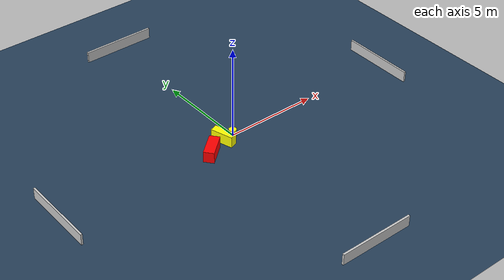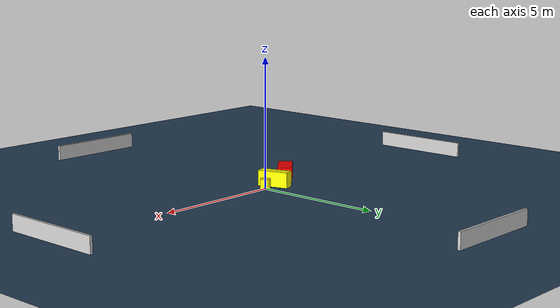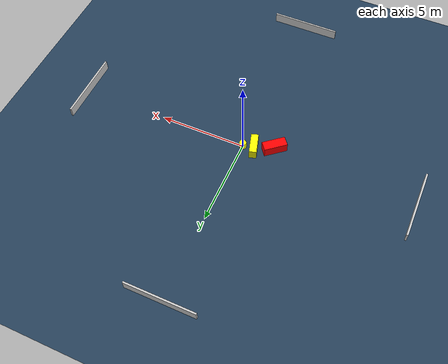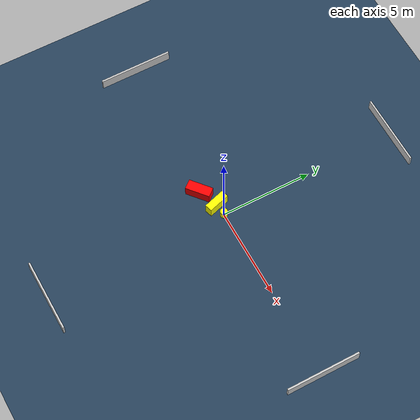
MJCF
<?xml version="1.0" ?>
<mujoco model="generated_environment">
  <option timestep="0.01" integrator="RK4" cone="elliptic"/>
  <default>
    <geom density="1"/>
  </default>
  <asset>
    <texture builtin="gradient" height="3072" name="skybox" rgb1="0.3 0.5 0.7" rgb2="0 0 0" type="skybox" width="512"/>
    <texture builtin="checker" height="300" name="groundplane" rgb1="0.2 0.3 0.4" rgb2="0.1 0.2 0.3" type="2d" width="300"/>
    <material name="groundplane" reflectance="0.2" texrepeat="5 5" texture="groundplane"/>
  </asset>
  <worldbody>
    <light dir="0 0 -1" directional="true" pos="0 0 1.5"/>
    <geom condim="3" friction="0.5 0.005 0.001" material="groundplane" name="floor" pos="0 0 0" size="0 0 0.05" type="plane"/>
    <body name="walls">
      <geom name="wall_1" condim="4" pos="-10.0 0.0 0.3" rgba="0.800000011920929 0.800000011920929 0.800000011920929 1.0" size="0.05 2.0 0.3" type="box"/>
      <geom name="wall_2" condim="4" pos="10.0 0.0 0.3" rgba="0.800000011920929 0.800000011920929 0.800000011920929 1.0" size="0.05 2.0 0.3" type="box"/>
      <geom name="wall_3" condim="4" pos="0.0 -10.0 0.3" rgba="0.800000011920929 0.800000011920929 0.800000011920929 1.0" size="2.0 0.05 0.3" type="box"/>
      <geom name="wall_4" condim="4" pos="0.0 10.0 0.3" rgba="0.800000011920929 0.800000011920929 0.800000011920929 1.0" size="2.0 0.05 0.3" type="box"/>
    </body>
    <body name="robot">
      <joint name="joint_x" type="slide" pos="0 0 0" axis="1 0 0"/>
      <joint name="joint_y" type="slide" pos="0 0 0" axis="0 1 0"/>
      <geom name="robot" type="cylinder" pos="0.0 0.0 0.2" size="0.2 0.2 0.0" mass="5.0" friction="1.0 0.005 0.0001" condim="4" rgba="1.0 1.0 0.0 1.0"/>
    </body>
    <body name="obstacle_1_movable">
      <geom name="obstacle_1_movable" condim="4" pos="-0.6276132763781735 -0.08544922941702845 0.3" euler="0 0 196.932857083238" friction="0.0 0.005 0.001" rgba="1.0 1.0 0.0 1.0" size="0.20780155859120492 0.6039123406882118 0.3" type="box" mass="0.1"/>
      <joint type="free"/>
    </body>
    <body name="obstacle_2_static">
      <geom name="obstacle_2_static" condim="4" pos="-1.7030617833391197 -0.5217320895286046 0.3" euler="0 0 219.5670646091652" friction="0.0 0.005 0.001" rgba="1.0 0.0 0.0 1.0" size="0.6680788397841608 0.2737598606647541 0.3" type="box"/>
    </body>
  </worldbody>
  <actuator>
    <motor name="actuator_x" joint="joint_x" gear="1" ctrlrange="-1 1"/>
    <motor name="actuator_y" joint="joint_y" gear="1" ctrlrange="-1 1"/>
  </actuator>
</mujoco>
